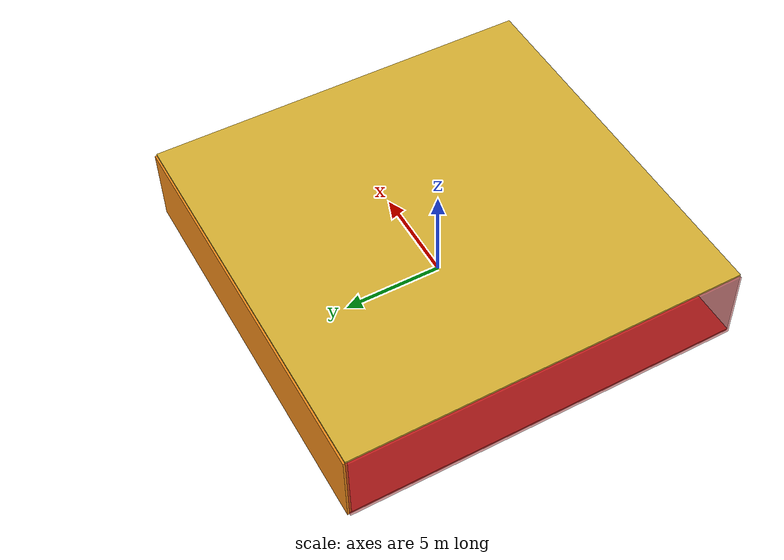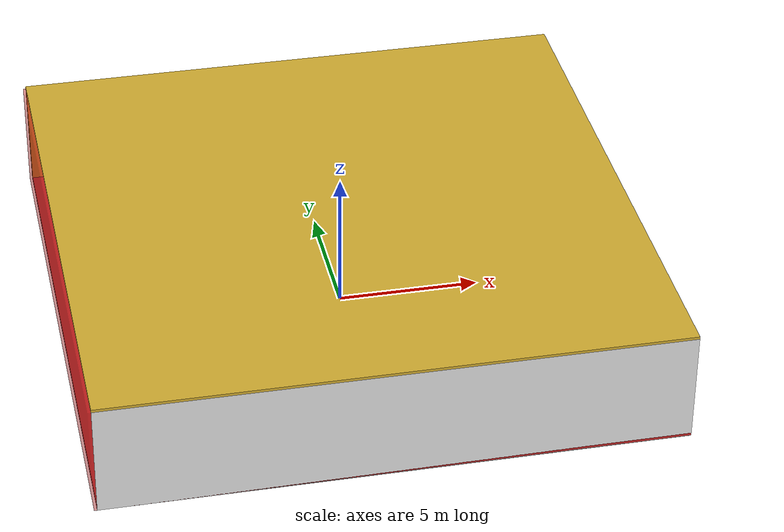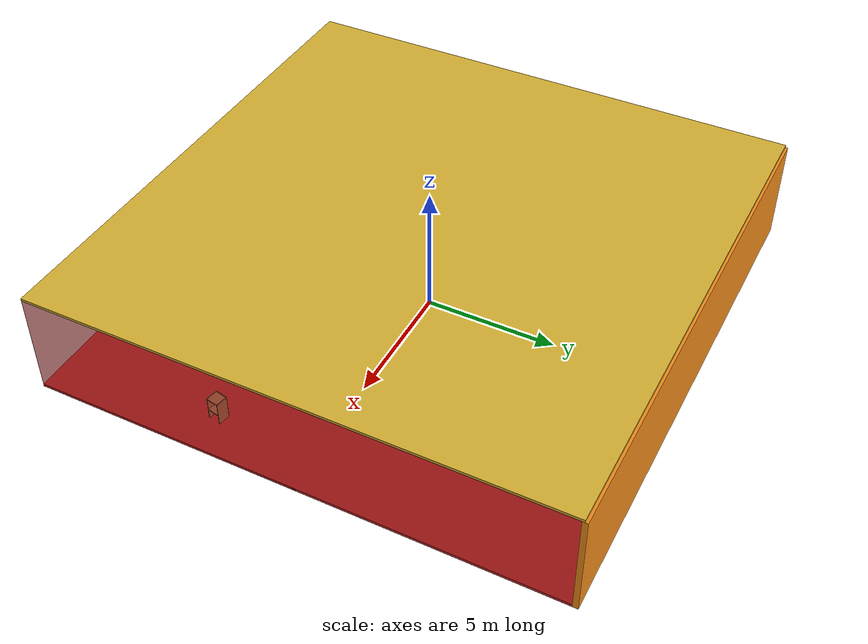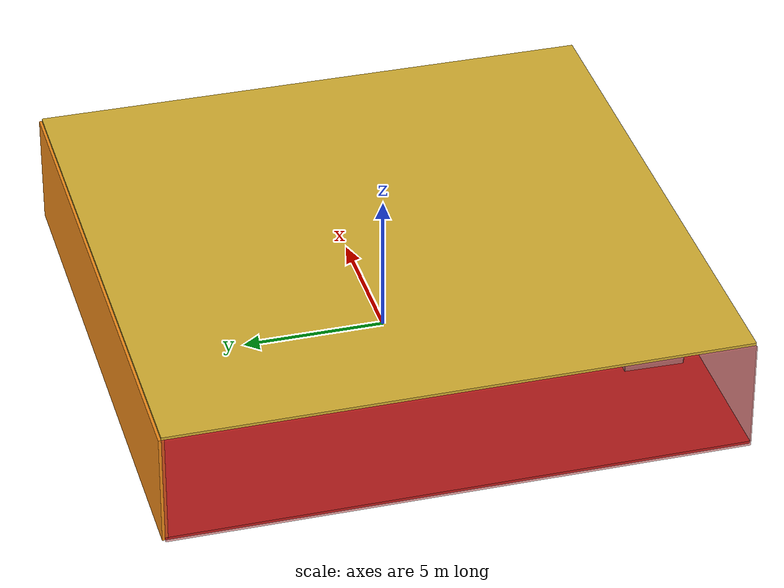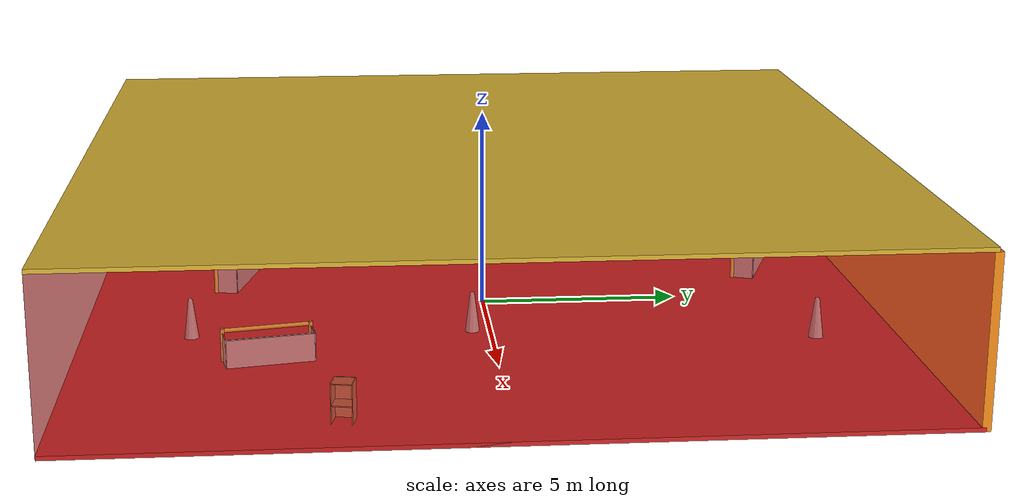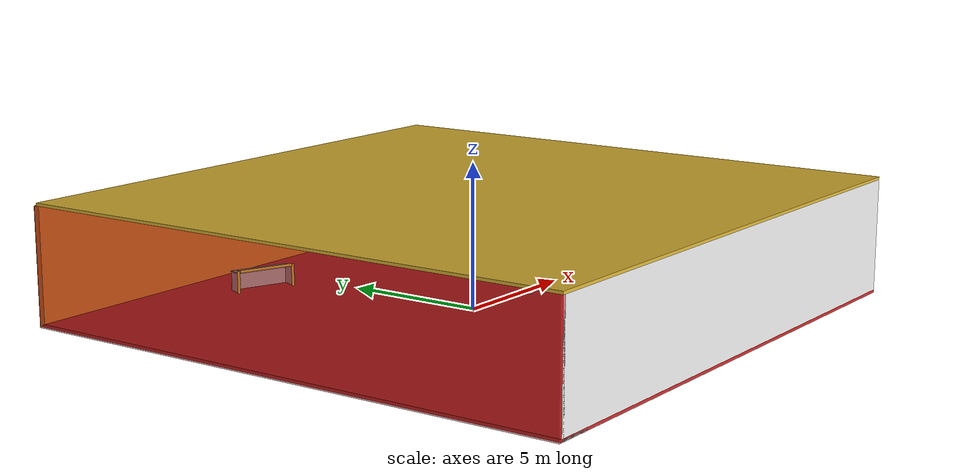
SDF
<sdf version="1.4">
 <world name="default">
  <physics type="ode">
   <max_step_size>0.001</max_step_size>
   <real_time_factor>1</real_time_factor>
   <real_time_update_rate>1000</real_time_update_rate>
   <gravity>0 0 -9.8</gravity>
  </physics>
  <scene><ambient>0.4 0.4 0.4 1</ambient><background>0.7 0.7 0.7 1</background><shadows>1</shadows></scene>
  <model name="Surrounding">
   <static>1</static>
   <link name="Ceiling">
    <collision name="Ceiling_Collision"><geometry><box><size>20 20 0.1</size></box></geometry></collision>
    <visual name="Ceiling_Visual">
     <geometry><box><size>20 20 0.1</size></box></geometry>
     <material>
      <script><uri>file://media/materials/scripts/gazebo.material</uri><name>Gazebo/Gold</name></script>
     </material>
    </visual>
    <pose>0 0 4.05 0 0 0</pose>
   </link>
   <link name="Wall_South">
    <collision name="Wall_South_Collision">
     <geometry><box><size>20 0 4</size></box></geometry>
     <pose>0 0 2 0 -0 0</pose>
    </collision>
    <visual name="Wall_South_Visual">
     <pose>0 0 2 0 -0 0</pose>
     <geometry><box><size>20 0 4</size></box></geometry>
     <material>
      <script><uri>file://media/materials/scripts/gazebo.material</uri><name>Gazebo/White</name></script>
     </material>
    </visual>
    <velocity_decay><linear>0</linear><angular>0</angular></velocity_decay>
    <pose>0 -10 0 0 -0 0</pose>
   </link>
   <link name="Wall_East">
    <collision name="Wall_21_Collision">
     <geometry><box><size>20 0 4</size></box></geometry>
     <pose>0 0 2 0 -0 0</pose>
    </collision>
    <visual name="Wall_21_Visual">
     <pose>0 0 2 0 -0 0</pose>
     <geometry><box><size>20 0 4</size></box></geometry>
     <material>
      <script><uri>file://media/materials/scripts/gazebo.material</uri><name>Gazebo/RedTransparent</name></script>
     </material>
    </visual>
    <velocity_decay><linear>0</linear><angular>0</angular></velocity_decay>
    <pose>10 0 0 0 -0 1.5708</pose>
   </link>
   <link name="Wall_North">
    <collision name="Wall_22_Collision">
     <geometry><box><size>20 0.2 4</size></box></geometry>
     <pose>0 0 2 0 -0 0</pose>
    </collision>
    <visual name="Wall_22_Visual">
     <pose>0 0 2 0 -0 0</pose>
     <geometry><box><size>20 0.2 4</size></box></geometry>
     <material>
      <script><uri>file://media/materials/scripts/gazebo.material</uri><name>Gazebo/Orange</name></script>
     </material>
    </visual>
    <velocity_decay><linear>0</linear><angular>0</angular></velocity_decay>
    <pose>0 10 0 0 -0 0</pose>
   </link>
   <link name="Wall_West">
    <collision name="Wall_23_Collision">
     <geometry><box><size>20 0.2 4</size></box></geometry>
     <pose>0 0 2 0 -0 0</pose>
    </collision>
    <visual name="Wall_23_Visual">
     <pose>0 0 2 0 -0 0</pose>
     <geometry><box><size>20 0.2 4</size></box></geometry>
     <material>
      <script><uri>file://media/materials/scripts/gazebo.material</uri><name>Gazebo/RedTransparent</name></script>
     </material>
    </visual>
    <velocity_decay><linear>0</linear><angular>0</angular></velocity_decay>
    <pose>-10 0 0 0 0 -1.5708</pose>
   </link>
   <link name="Ground_link">
    <collision name="collision">
     <pose>0 0 .05 0 -0 0</pose>
     <geometry><box><size>20 20 0.1</size></box></geometry>
    </collision>
    <visual name="visual">
     <pose>0 0 .05 0 -0 0</pose>
     <geometry><box><size>20 20 0.1</size></box></geometry>
     <material>
      <script><uri>file://media/materials/scripts/gazebo.material</uri><name>Gazebo/Red</name></script>
     </material>
    </visual>
   </link>
   <static>1</static>
  </model>
  <spherical_coordinates>
   <surface_model>EARTH_WGS84</surface_model>
   <latitude_deg>0</latitude_deg>
   <longitude_deg>0</longitude_deg>
   <elevation>0</elevation>
   <heading_deg>0</heading_deg>
  </spherical_coordinates>
  <light name="lightball_0" type="diffuse">
   <diffuse>0.8 0.8 0.8 1</diffuse>
   <specular>0.2 0.2 0.2 1</specular>
   <attenuation>
    <range>100</range>
    <constant>0.7</constant>
    <linear>0.01</linear>
    <quadratic>0.001</quadratic>
   </attenuation>
   <direction>-0.5 0.1 -0.9</direction>
   <pose>-2.50204468263 -7.75498578767 1.80983845011 0 0 0</pose>
  </light>
  <light name="lightball_1" type="diffuse">
   <diffuse>0.8 0.8 0.8 1</diffuse>
   <specular>0.2 0.2 0.2 1</specular>
   <attenuation>
    <range>100</range>
    <constant>0.7</constant>
    <linear>0.01</linear>
    <quadratic>0.001</quadratic>
   </attenuation>
   <direction>-0.5 0.1 -0.9</direction>
   <pose>-9.76576629627 0.463883831231 2.16631888866 0 0 0</pose>
  </light>
  <light name="lightball_2" type="diffuse">
   <diffuse>0.8 0.8 0.8 1</diffuse>
   <specular>0.2 0.2 0.2 1</specular>
   <attenuation>
    <range>100</range>
    <constant>0.7</constant>
    <linear>0.01</linear>
    <quadratic>0.001</quadratic>
   </attenuation>
   <direction>-0.5 0.1 -0.9</direction>
   <pose>8.69724292191 -8.54735200642 1.70147765462 0 0 0</pose>
  </light>
  <light name="lightball_3" type="diffuse">
   <diffuse>0.8 0.8 0.8 1</diffuse>
   <specular>0.2 0.2 0.2 1</specular>
   <attenuation>
    <range>100</range>
    <constant>0.7</constant>
    <linear>0.01</linear>
    <quadratic>0.001</quadratic>
   </attenuation>
   <direction>-0.5 0.1 -0.9</direction>
   <pose>7.30789588737 9.46115908061 3.5328526486 0 0 0</pose>
  </light>
  <light name="lightball_4" type="diffuse">
   <diffuse>0.8 0.8 0.8 1</diffuse>
   <specular>0.2 0.2 0.2 1</specular>
   <attenuation>
    <range>100</range>
    <constant>0.7</constant>
    <linear>0.01</linear>
    <quadratic>0.001</quadratic>
   </attenuation>
   <direction>-0.5 0.1 -0.9</direction>
   <pose>7.03038410265 1.78164105401 1.87567595374 0 0 0</pose>
  </light>
  <light name="lightball_5" type="diffuse">
   <diffuse>0.8 0.8 0.8 1</diffuse>
   <specular>0.2 0.2 0.2 1</specular>
   <attenuation>
    <range>100</range>
    <constant>0.7</constant>
    <linear>0.01</linear>
    <quadratic>0.001</quadratic>
   </attenuation>
   <direction>-0.5 0.1 -0.9</direction>
   <pose>5.56929714261 -5.05037258404 1.97522734709 0 0 0</pose>
  </light>
  <light name="lightball_6" type="diffuse">
   <diffuse>0.8 0.8 0.8 1</diffuse>
   <specular>0.2 0.2 0.2 1</specular>
   <attenuation>
    <range>100</range>
    <constant>0.7</constant>
    <linear>0.01</linear>
    <quadratic>0.001</quadratic>
   </attenuation>
   <direction>-0.5 0.1 -0.9</direction>
   <pose>1.85761890908 -1.5657406783 1.9491869482 0 0 0</pose>
  </light>
  <light name="lightball_7" type="diffuse">
   <diffuse>0.8 0.8 0.8 1</diffuse>
   <specular>0.2 0.2 0.2 1</specular>
   <attenuation>
    <range>100</range>
    <constant>0.7</constant>
    <linear>0.01</linear>
    <quadratic>0.001</quadratic>
   </attenuation>
   <direction>-0.5 0.1 -0.9</direction>
   <pose>-6.74441115945 -6.22777323056 3.63751364494 0 0 0</pose>
  </light>
  <light name="lightball_8" type="diffuse">
   <diffuse>0.8 0.8 0.8 1</diffuse>
   <specular>0.2 0.2 0.2 1</specular>
   <attenuation>
    <range>100</range>
    <constant>0.7</constant>
    <linear>0.01</linear>
    <quadratic>0.001</quadratic>
   </attenuation>
   <direction>-0.5 0.1 -0.9</direction>
   <pose>2.11076421683 -8.38546908743 2.91862182265 0 0 0</pose>
  </light>
  <light name="lightball_9" type="diffuse">
   <diffuse>0.8 0.8 0.8 1</diffuse>
   <specular>0.2 0.2 0.2 1</specular>
   <attenuation>
    <range>100</range>
    <constant>0.7</constant>
    <linear>0.01</linear>
    <quadratic>0.001</quadratic>
   </attenuation>
   <direction>-0.5 0.1 -0.9</direction>
   <pose>0.462884500767 0.60174534513 1.0156411884 0 0 0</pose>
  </light>
  <light name="lightball_10" type="diffuse">
   <diffuse>0.8 0.8 0.8 1</diffuse>
   <specular>0.2 0.2 0.2 1</specular>
   <attenuation>
    <range>100</range>
    <constant>0.7</constant>
    <linear>0.01</linear>
    <quadratic>0.001</quadratic>
   </attenuation>
   <direction>-0.5 0.1 -0.9</direction>
   <pose>-3.2197251399 -0.407417579075 3.89286393443 0 0 0</pose>
  </light>
  <light name="lightball_11" type="diffuse">
   <diffuse>0.8 0.8 0.8 1</diffuse>
   <specular>0.2 0.2 0.2 1</specular>
   <attenuation>
    <range>100</range>
    <constant>0.7</constant>
    <linear>0.01</linear>
    <quadratic>0.001</quadratic>
   </attenuation>
   <direction>-0.5 0.1 -0.9</direction>
   <pose>-1.02059504355 2.59259610197 1.64841503361 0 0 0</pose>
  </light>
  <light name="lightball_12" type="diffuse">
   <diffuse>0.8 0.8 0.8 1</diffuse>
   <specular>0.2 0.2 0.2 1</specular>
   <attenuation>
    <range>100</range>
    <constant>0.7</constant>
    <linear>0.01</linear>
    <quadratic>0.001</quadratic>
   </attenuation>
   <direction>-0.5 0.1 -0.9</direction>
   <pose>-1.76021665914 2.73870194487 2.08409298019 0 0 0</pose>
  </light>
  <include>
   <uri>model://robocup_3Dsim_goal</uri>
   <pose>-4.54899209857 -8.28759436659 0 0 0 3.11552738241</pose>
  </include>
  <include>
   <uri>model://robocup_3Dsim_goal</uri>
   <pose>-2.02733852745 -6.68158762582 0 0 0 1.33862386573</pose>
  </include>
  <include>
   <uri>model://robocup_3Dsim_goal</uri>
   <pose>-2.28944921524 7.23429908048 0 0 0 1.20405018551</pose>
  </include>
  <include>
   <uri>model://construction_cone</uri>
   <pose>2.63814811405 -7.31822108082 0 0 0 0.798456588639</pose>
  </include>
  <include>
   <uri>model://construction_cone</uri>
   <pose>2.65916964706 -0.460797845859 0 0 0 2.7348009473</pose>
  </include>
  <include>
   <uri>model://robocup_3Dsim_goal</uri>
   <pose>4.23370230777 -5.43293944535 0 0 0 0.190084932335</pose>
  </include>
  <include>
   <uri>model://construction_cone</uri>
   <pose>3.76917805344 7.86783558841 0 0 0 2.76450604631</pose>
  </include>
  <include><uri>model://cabinet</uri><pose>8.50635382992 -3.66755619715 0 0 0 2.94728540403</pose></include>
 </world>
</sdf>

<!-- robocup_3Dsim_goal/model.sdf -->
<sdf version="1.5">
  <model name="robocup_3d_goal">
    <static>true</static>
    <link name="left_post">
      <pose>0 1.05 0.45 0 0 0</pose>
      <collision name="collision">
        <geometry>
          <cylinder>
            <radius>0.05</radius>
            <length>0.9</length>
          </cylinder>
        </geometry>
      </collision>
      <visual name="visual">
        <geometry>
          <cylinder>
            <radius>0.05</radius>
            <length>0.9</length>
          </cylinder>
        </geometry>
        <material>
          <script>
            <uri>file://media/materials/scripts/gazebo.material</uri>
            <name>Gazebo/ZincYellow</name>
          </script>
        </material>
      </visual>
    </link>
    <link name="left_support_horiz_lower">
      <pose>0.30 1.05 0.01 0 0 0</pose>
      <collision name="collision">
        <geometry>
          <box>
            <size>0.50 0.02 0.02</size>
          </box>
        </geometry>
      </collision>
      <visual name="visual">
        <geometry>
          <box>
            <size>0.50 0.02 0.02</size>
          </box>
        </geometry>
        <material>
          <script>
            <uri>file://media/materials/scripts/gazebo.material</uri>
            <name>Gazebo/White</name>
          </script>
        </material>
      </visual>
    </link>
    <link name="left_support_horiz_upper">
      <pose>0.30 1.05 0.79 0 0 0</pose>
      <collision name="collision">
        <geometry>
          <box>
            <size>0.50 0.02 0.02</size>
          </box>
        </geometry>
      </collision>
      <visual name="visual">
        <geometry>
          <box>
            <size>0.50 0.02 0.02</size>
          </box>
        </geometry>
        <material>
          <script>
            <uri>file://media/materials/scripts/gazebo.material</uri>
            <name>Gazebo/White</name>
          </script>
        </material>
      </visual>
    </link>
    <link name="left_support_vertical">
      <pose>0.56 1.05 0.4 0 1.5708 0</pose>
      <collision name="collision">
        <geometry>
          <box>
            <size>0.80 0.02 0.02</size>
          </box>
        </geometry>
      </collision>
      <visual name="visual">
        <geometry>
          <box>
            <size>0.80 0.02 0.02</size>
          </box>
        </geometry>
        <material>
          <script>
            <uri>file://media/materials/scripts/gazebo.material</uri>
            <name>Gazebo/White</name>
          </script>
        </material>
      </visual>
    </link>
    <link name="right_support_horiz_lower">
      <pose>0.30 -1.05 0.01 0 0 0</pose>
      <collision name="collision">
        <geometry>
          <box>
            <size>0.50 0.02 0.02</size>
          </box>
        </geometry>
      </collision>
      <visual name="visual">
        <geometry>
          <box>
            <size>0.50 0.02 0.02</size>
          </box>
        </geometry>
        <material>
          <script>
            <uri>file://media/materials/scripts/gazebo.material</uri>
            <name>Gazebo/White</name>
          </script>
        </material>
      </visual>
    </link>
    <link name="right_support_horiz_upper">
      <pose>0.30 -1.05 0.79 0 0 0</pose>
      <collision name="collision">
        <geometry>
          <box>
            <size>0.50 0.02 0.02</size>
          </box>
        </geometry>
      </collision>
      <visual name="visual">
        <geometry>
          <box>
            <size>0.50 0.02 0.02</size>
          </box>
        </geometry>
        <material>
          <script>
            <uri>file://media/materials/scripts/gazebo.material</uri>
            <name>Gazebo/White</name>
          </script>
        </material>
      </visual>
    </link>
    <link name="right_support_vertical">
      <pose>0.56 -1.05 0.4 0 1.5708 0</pose>
      <collision name="collision">
        <geometry>
          <box>
            <size>0.80 0.02 0.02</size>
          </box>
        </geometry>
      </collision>
      <visual name="visual">
        <geometry>
          <box>
            <size>0.80 0.02 0.02</size>
          </box>
        </geometry>
        <material>
          <script>
            <uri>file://media/materials/scripts/gazebo.material</uri>
            <name>Gazebo/White</name>
          </script>
        </material>
      </visual>
    </link>
    <link name="center_support_horiz_lower">
      <pose>0.56 0 0.01 0 1.5708 0</pose>
      <collision name="collision">
        <geometry>
          <box>
            <size>0.02 2.08 0.02</size>
          </box>
        </geometry>
      </collision>
      <visual name="visual">
        <geometry>
          <box>
            <size>0.02 2.08 0.02</size>
          </box>
        </geometry>
        <material>
          <script>
            <uri>file://media/materials/scripts/gazebo.material</uri>
            <name>Gazebo/White</name>
          </script>
        </material>
      </visual>
    </link>
    <link name="center_support_horiz_upper">
      <pose>0.56 0 0.79 0 1.5708 0</pose>
      <collision name="collision">
        <geometry>
          <box>
            <size>0.02 2.08 0.02</size>
          </box>
        </geometry>
      </collision>
      <visual name="visual">
        <geometry>
          <box>
            <size>0.02 2.08 0.02</size>
          </box>
        </geometry>
        <material>
          <script>
            <uri>file://media/materials/scripts/gazebo.material</uri>
            <name>Gazebo/White</name>
          </script>
        </material>
      </visual>
    </link>
    <link name="right_post">
      <pose>0 -1.05 0.45 0 0 0</pose>
      <collision name="collision">
        <geometry>
          <cylinder>
            <radius>0.05</radius>
            <length>0.9</length>
          </cylinder>
        </geometry>
      </collision>
      <visual name="visual">
        <geometry>
          <cylinder>
            <radius>0.05</radius>
            <length>0.9</length>
          </cylinder>
        </geometry>
        <material>
          <script>
            <uri>file://media/materials/scripts/gazebo.material</uri>
            <name>Gazebo/ZincYellow</name>
          </script>
        </material>
      </visual>
    </link>
    <link name="crossbar">
      <pose>0 0 0.85 1.57 1.57 0</pose>
      <collision name="collision">
        <geometry>
          <cylinder>
            <radius>0.05</radius>
            <length>2.0</length>
          </cylinder>
        </geometry>
      </collision>
      <visual name="visual">
        <geometry>
          <cylinder>
            <radius>0.05</radius>
            <length>2.0</length>
          </cylinder>
        </geometry>
        <material>
          <script>
            <uri>file://media/materials/scripts/gazebo.material</uri>
            <name>Gazebo/ZincYellow</name>
          </script>
        </material>
      </visual>
    </link>
    <link name="center_net">
      <pose>0.56 0 0.40 0 0 0</pose>
      <collision name="collision">
        <geometry>
          <box>
            <size>0.01 2.1 0.80</size>
          </box>
        </geometry>
      </collision>
      <visual name="visual">
        <geometry>
          <box>
            <size>0.01 2.1 0.80</size>
          </box>
        </geometry>
        <material>
          <script>
            <uri>model://../model_source/models/robocup09_spl_field/materials/scripts/</uri>
            <uri>model://../model_source/models/robocup09_spl_field/materials/textures/</uri>
            <name>RoboCup/Net</name>
          </script>
        </material>
      </visual>
    </link>
    <link name="left_net">
      <pose>0.30 1.05 0.40 0 0 0</pose>
      <collision name="collision">
        <geometry>
          <box>
            <size>0.50 0.01 0.76</size>
          </box>
        </geometry>
      </collision>
      <visual name="visual">
        <geometry>
          <box>
            <size>0.50 0.01 0.76</size>
          </box>
        </geometry>
        <material>
          <script>
            <uri>model://../model_source/models/robocup09_spl_field/materials/scripts/</uri>
            <uri>model://../model_source/models/robocup09_spl_field/materials/textures/</uri>
            <name>RoboCup/Net</name>
          </script>
        </material>
      </visual>
    </link>
    <link name="right_net">
      <pose>0.30 -1.05 0.40 0 0 0</pose>
      <collision name="collision">
        <geometry>
          <box>
            <size>0.50 0.01 0.76</size>
          </box>
        </geometry>
      </collision>
      <visual name="visual">
        <geometry>
          <box>
            <size>0.50 0.01 0.76</size>
          </box>
        </geometry>
        <material>
          <script>
            <uri>model://../model_source/models/robocup09_spl_field/materials/scripts/</uri>
            <uri>model://../model_source/models/robocup09_spl_field/materials/textures/</uri>
            <name>RoboCup/Net</name>
          </script>
        </material>
      </visual>
    </link>
  </model>
</sdf>

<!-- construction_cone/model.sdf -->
<sdf version="1.5">
  <model name="Construction Cone">
    <link name="link">
      <collision name="collision">
        <geometry>
          <mesh>
            <scale>10 10 10</scale>
            <uri>file://isr-testbed/construction_cone/meshes/construction_cone.dae</uri>
          </mesh>
        </geometry>
      </collision>
      <visual name="visual">
        <geometry>
          <mesh>
            <scale>10 10 10</scale>
            <uri>file://isr-testbed/construction_cone/meshes/construction_cone.dae</uri>
          </mesh>
        </geometry>
      </visual>
    </link>
  </model>
</sdf>

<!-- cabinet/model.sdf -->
<sdf version="1.5">
  <model name="cabinet">
    <static>true</static>
    <link name="cabinet_bottom_plate">
      <inertial>
        <pose>0 0 -1 0 0 0</pose>
        <inertia>
          <ixx>2.050000</ixx>
          <ixy>0</ixy>
          <ixz>0</ixz>
          <iyy>2.050000</iyy>
          <iyz>0</iyz>
          <izz>2.050000</izz>
        </inertia>
        <mass>25.000000</mass>
      </inertial>
      <collision name="cabinet_bottom_plate_geom">
        <pose>0 0 0.010000 0 0 0</pose>
        <geometry>
          <box>
            <size>0.450000 0.450000 0.020000</size>
          </box>
        </geometry>
      </collision>
      <visual name="cabinet_bottom_plate_geom_visual">
        <pose>0 0 0.010000 0 0 0</pose>
        <geometry>
          <box>
            <size>0.450000 0.450000 0.020000</size>
          </box>
        </geometry>
        <material>
          <script>
            <uri>model://media/materials/scripts/gazebo.material</uri>
            <name>Gazebo/Wood</name>
          </script>
        </material>
      </visual>
      <collision name="cabinet_bottom_plate_geom_cabinet_back_plate">
        <pose>0.235000 0 0.510000 0 0 0</pose>
        <geometry>
          <box>
            <size>0.020000 0.450000 1.020000</size>
          </box>
        </geometry>
      </collision>
      <visual name="cabinet_bottom_plate_geom_cabinet_back_plate_visual">
        <pose>0.235000 0 0.510000 0 0 0</pose>
        <geometry>
          <box>
            <size>0.020000 0.450000 1.020000</size>
          </box>
        </geometry>
        <material>
          <script>
            <uri>model://media/materials/scripts/gazebo.material</uri>
            <name>Gazebo/Wood</name>
          </script>
        </material>
      </visual>
      <collision name="cabinet_bottom_plate_geom_cabinet_left_plate">
        <pose>0 0.235000 0.510000 0 0 0</pose>
        <geometry>
          <box>
            <size>0.450000 0.020000 1.020000</size>
          </box>
        </geometry>
      </collision>
      <visual name="cabinet_bottom_plate_geom_cabinet_left_plate_visual">
        <pose>0 0.235000 0.510000 0 0 0</pose>
        <geometry>
          <box>
            <size>0.450000 0.020000 1.020000</size>
          </box>
        </geometry>
        <material>
          <script>
            <uri>model://media/materials/scripts/gazebo.material</uri>
            <name>Gazebo/Wood</name>
          </script>
        </material>
      </visual>
      <collision name="cabinet_bottom_plate_geom_cabinet_middle_plate">
        <pose>0 0 0.510000 0 0 0</pose>
        <geometry>
          <box>
            <size>0.450000 0.450000 0.020000</size>
          </box>
        </geometry>
      </collision>
      <visual name="cabinet_bottom_plate_geom_cabinet_middle_plate_visual">
        <pose>0 0 0.510000 0 0 0</pose>
        <geometry>
          <box>
            <size>0.450000 0.450000 0.020000</size>
          </box>
        </geometry>
        <material>
          <script>
            <uri>model://media/materials/scripts/gazebo.material</uri>
            <name>Gazebo/Wood</name>
          </script>
        </material>
      </visual>
      <collision name="cabinet_bottom_plate_geom_cabinet_right_plate">
        <pose>0 -0.235000 0.510000 0 0 0</pose>
        <geometry>
          <box>
            <size>0.450000 0.020000 1.020000</size>
          </box>
        </geometry>
      </collision>
      <visual name="cabinet_bottom_plate_geom_cabinet_right_plate_visual">
        <pose>0 -0.235000 0.510000 0 0 0</pose>
        <geometry>
          <box>
            <size>0.450000 0.020000 1.020000</size>
          </box>
        </geometry>
        <material>
          <script>
            <uri>model://media/materials/scripts/gazebo.material</uri>
            <name>Gazebo/Wood</name>
          </script>
        </material>
      </visual>
      <collision name="cabinet_bottom_plate_geom_cabinet_top_plate">
        <pose>0 0 1.010000 0 0 0</pose>
        <geometry>
          <box>
            <size>0.450000 0.450000 0.020000</size>
          </box>
        </geometry>
      </collision>
      <visual name="cabinet_bottom_plate_geom_cabinet_top_plate_visual">
        <pose>0 0 1.010000 0 0 0</pose>
        <geometry>
          <box>
            <size>0.450000 0.450000 0.020000</size>
          </box>
        </geometry>
        <material>
          <script>
            <uri>model://media/materials/scripts/gazebo.material</uri>
            <name>Gazebo/Wood</name>
          </script>
        </material>
      </visual>
    </link>
  </model>
</sdf>
